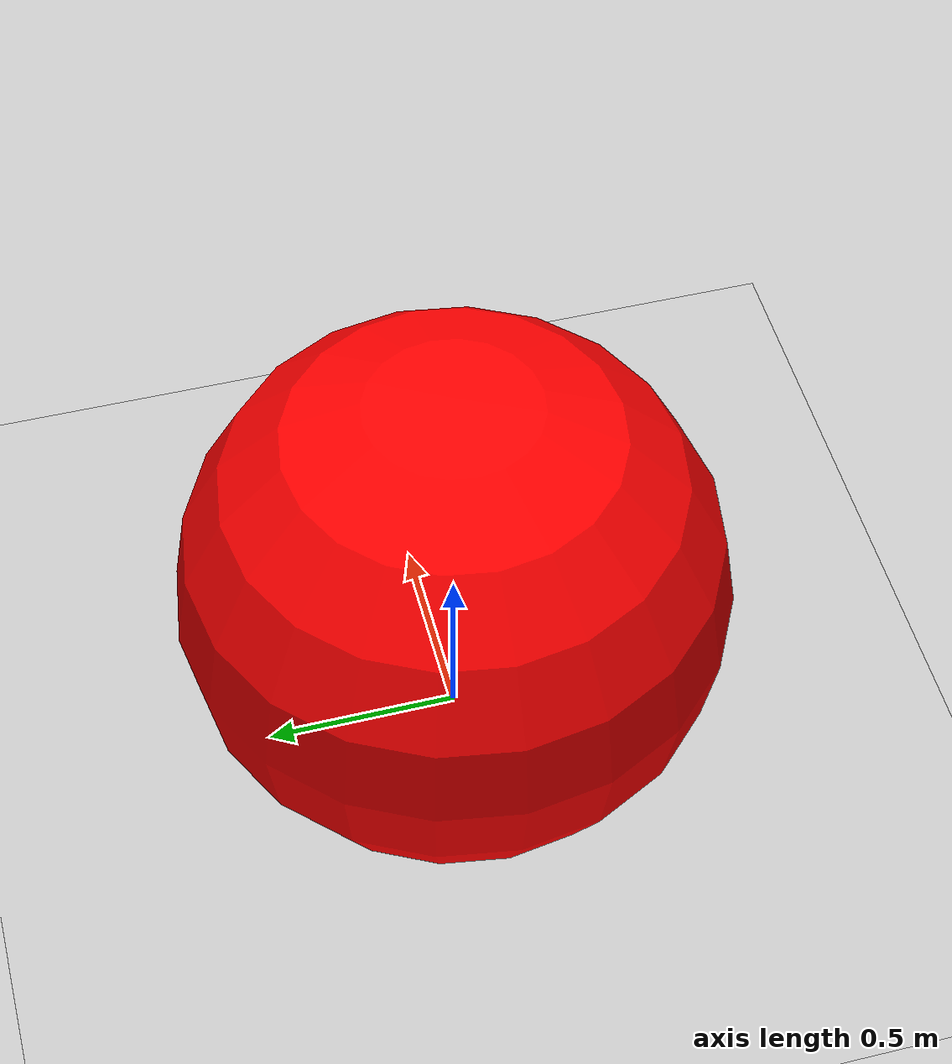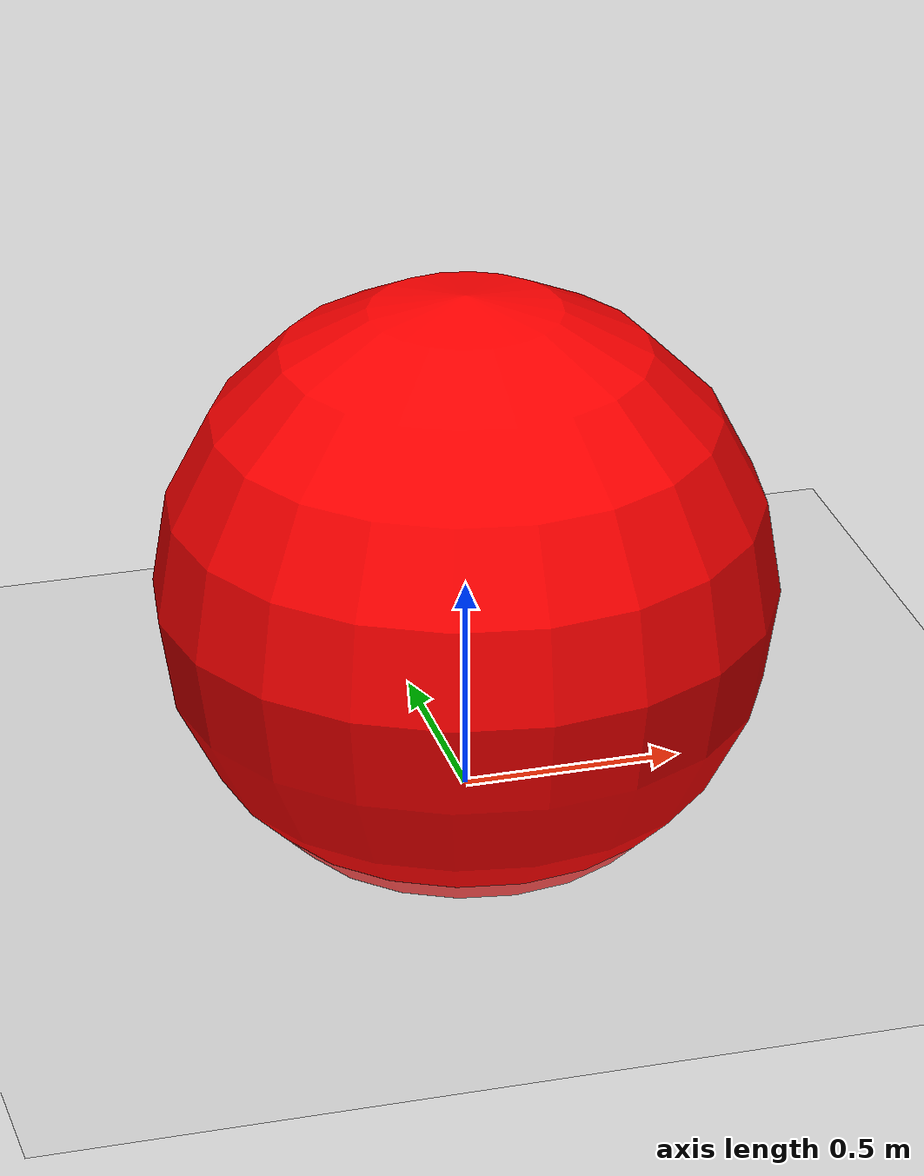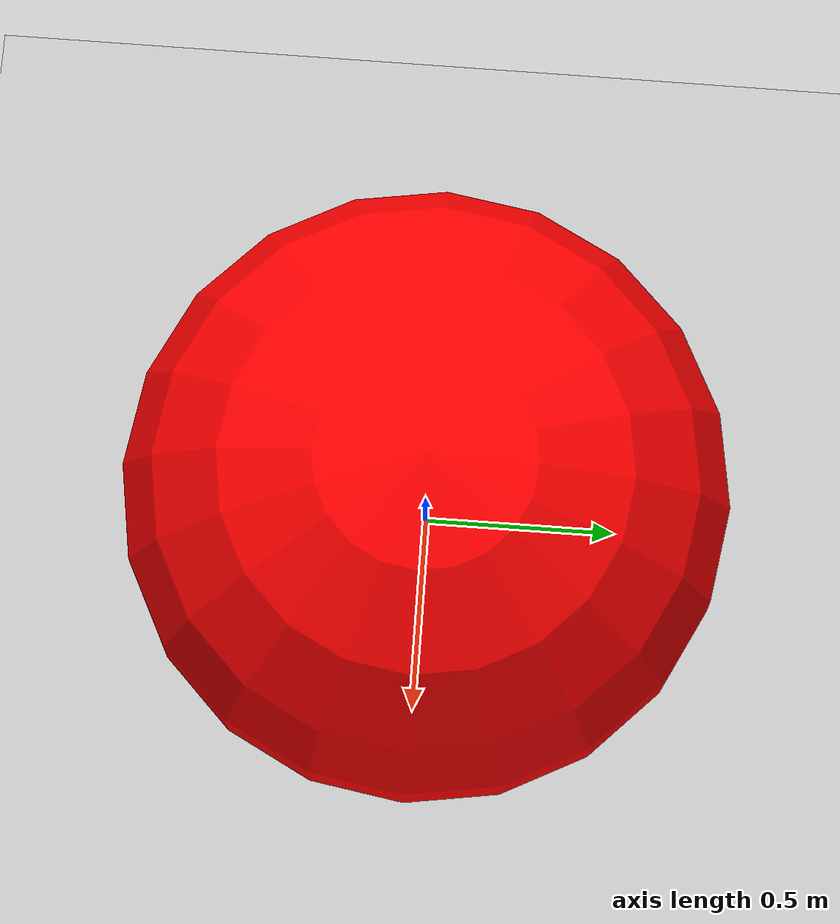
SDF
<sdf version="1.5">
 <world name="default">
  <include><uri>model://sun</uri></include>
  <include><uri>model://ground_plane</uri></include>
  <include><uri>model://asphalt_plane</uri></include>
  <model name="obstacle0">
   <gravity>0</gravity>
   <pose>0 0 0.5 0 0 0</pose>
   <link name="link">
    <gravity>0</gravity>
    <collision name="collision"><geometry><sphere><radius>0.3</radius></sphere></geometry></collision>
    <visual name="visual">
     <geometry><sphere><radius>0.3</radius></sphere></geometry>
     <material><ambient>1 0 0 1</ambient><diffuse>1 0 0 1</diffuse></material>
    </visual>
   </link>
  </model>
  <model name="obstacle1">
   <gravity>0</gravity>
   <pose>0 0 0.5 0 0 0</pose>
   <link name="link">
    <gravity>0</gravity>
    <collision name="collision"><geometry><sphere><radius>0.6</radius></sphere></geometry></collision>
    <visual name="visual">
     <geometry><sphere><radius>0.6</radius></sphere></geometry>
     <material><ambient>0 1 0 1</ambient><diffuse>1 0 0 1</diffuse></material>
    </visual>
   </link>
  </model>
  <model name="obstacle2">
   <gravity>0</gravity>
   <pose>0 0 0.5 0 0 0</pose>
   <link name="link">
    <gravity>0</gravity>
    <collision name="collision"><geometry><sphere><radius>0.7</radius></sphere></geometry></collision>
    <visual name="visual">
     <geometry><sphere><radius>0.7</radius></sphere></geometry>
     <material><ambient>0 0 1 1</ambient><diffuse>1 0 0 1</diffuse></material>
    </visual>
   </link>
  </model>
  <model name="obstacle3">
   <gravity>0</gravity>
   <pose>0 0 0.5 0 0 0</pose>
   <link name="link">
    <gravity>0</gravity>
    <collision name="collision"><geometry><sphere><radius>0.5</radius></sphere></geometry></collision>
    <visual name="visual">
     <geometry><sphere><radius>0.5</radius></sphere></geometry>
     <material><ambient>0.6 0.5 0.3 1</ambient><diffuse>1 0 0 1</diffuse></material>
    </visual>
   </link>
  </model>
  <model name="obstacle4">
   <gravity>0</gravity>
   <pose>0 0 0.5 0 0 0</pose>
   <link name="link">
    <gravity>0</gravity>
    <collision name="collision"><geometry><sphere><radius>0.2</radius></sphere></geometry></collision>
    <visual name="visual">
     <geometry><sphere><radius>0.2</radius></sphere></geometry>
     <material><ambient>0.2 0.5 0.3 1</ambient><diffuse>1 0 0 1</diffuse></material>
    </visual>
   </link>
  </model>
  <model name="obstacle5">
   <gravity>0</gravity>
   <pose>0 0 0.5 0 0 0</pose>
   <link name="link">
    <gravity>0</gravity>
    <collision name="collision"><geometry><sphere><radius>0.2</radius></sphere></geometry></collision>
    <visual name="visual">
     <geometry><sphere><radius>0.2</radius></sphere></geometry>
     <material><ambient>0.8 0.3 0.3 1</ambient><diffuse>1 0 0 1</diffuse></material>
    </visual>
   </link>
  </model>
  <physics name="default_physics" default="0" type="ode">
   <gravity>0 0 -9.8066</gravity>
   <ode>
    <solver>
     <type>quick</type>
     <iters>10</iters>
     <sor>1.3</sor>
     <use_dynamic_moi_rescaling>0</use_dynamic_moi_rescaling>
    </solver>
    <constraints>
     <cfm>0</cfm>
     <erp>0.2</erp>
     <contact_max_correcting_vel>100</contact_max_correcting_vel>
     <contact_surface_layer>0.001</contact_surface_layer>
    </constraints>
   </ode>
   <max_step_size>0.004</max_step_size>
   <real_time_factor>1</real_time_factor>
   <real_time_update_rate>250</real_time_update_rate>
   <magnetic_field>6.0e-6 2.3e-5 -4.2e-5</magnetic_field>
  </physics>
 </world>
</sdf>
